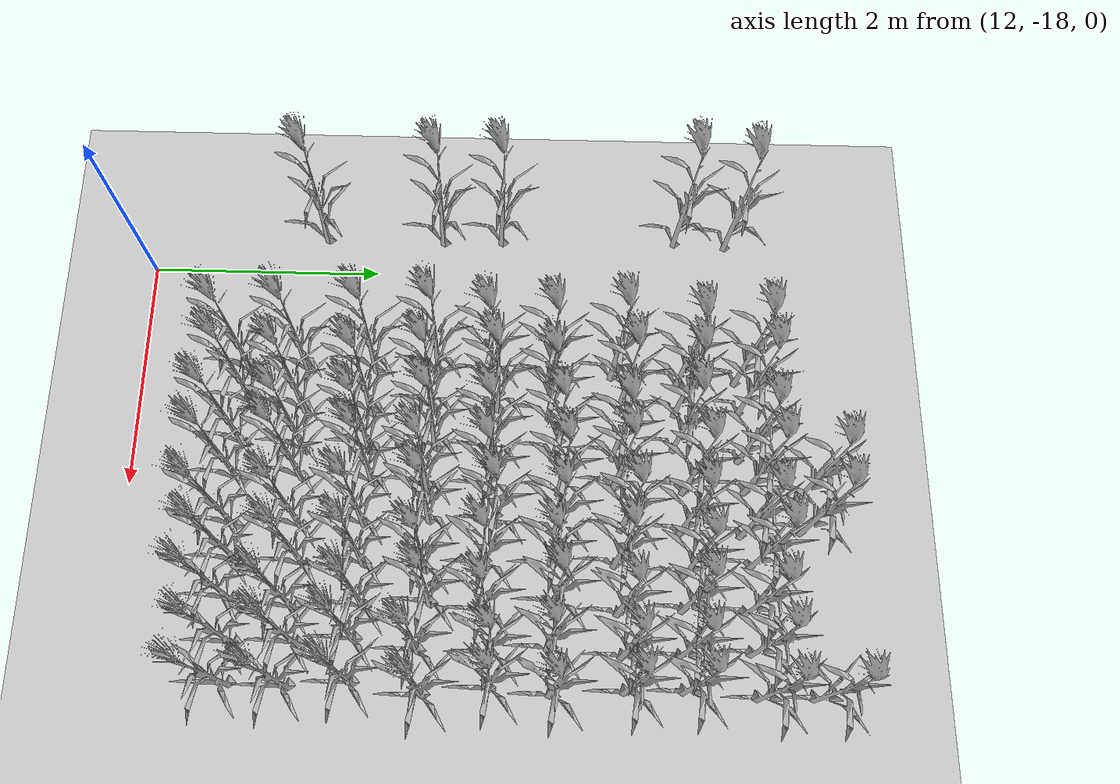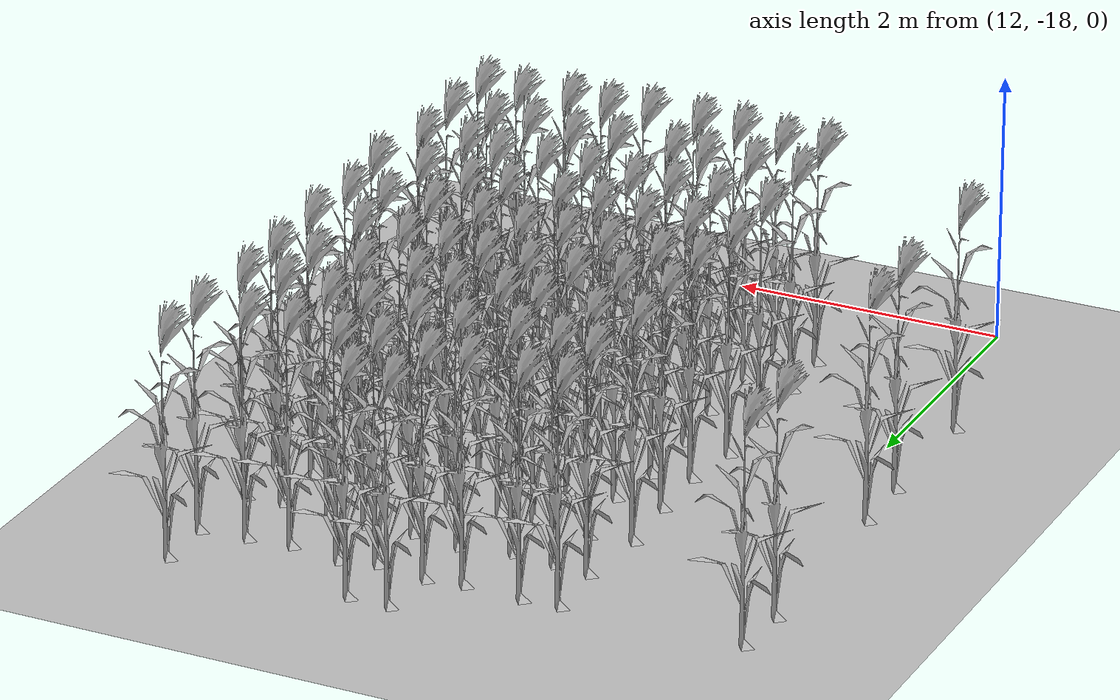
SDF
<sdf version="1.7">
 <world name="farmland_world">
  <model name="ground_plane">
   <static>1</static>
   <link name="link">
    <collision name="collision">
     <geometry><plane><normal>0 0 1</normal><size>40.0 40.0</size></plane></geometry>
     <surface><friction><ode><mu>100</mu><mu2>50</mu2></ode></friction></surface>
    </collision>
    <visual name="visual">
     <cast_shadows>0</cast_shadows>
     <geometry><plane><normal>0 0 1</normal><size>40.0 40.0</size></plane></geometry>
     <material>
      <script><uri>file://media/materials/scripts/gazebo.material</uri><name>Gazebo/Grey</name></script>
     </material>
    </visual>
   </link>
  </model>
  <model name="tree_3_1362">
   <static>1</static>
   <link name="link">
    <collision name="collision">
     <geometry><mesh><uri>model://Corn_low_poly/corn.obj</uri><scale>1 1 1</scale></mesh></geometry>
     <surface><friction><ode><mu>100</mu><mu2>50</mu2></ode></friction></surface>
    </collision>
    <visual name="visual">
     <geometry><mesh><uri>model://Corn_low_poly/corn.obj</uri><scale>1 1 1</scale></mesh></geometry>
    </visual>
   </link>
   <pose>11.697501459360396 -12.869083840189557 0 0 0 0</pose>
  </model>
  <model name="tree_3_1363">
   <static>1</static>
   <link name="link">
    <collision name="collision">
     <geometry><mesh><uri>model://Corn_low_poly/corn.obj</uri><scale>1 1 1</scale></mesh></geometry>
     <surface><friction><ode><mu>100</mu><mu2>50</mu2></ode></friction></surface>
    </collision>
    <visual name="visual">
     <geometry><mesh><uri>model://Corn_low_poly/corn.obj</uri><scale>1 1 1</scale></mesh></geometry>
    </visual>
   </link>
   <pose>11.67149992586985 -13.322973555650515 0 0 0 0</pose>
  </model>
  <model name="tree_3_1366">
   <static>1</static>
   <link name="link">
    <collision name="collision">
     <geometry><mesh><uri>model://Corn_low_poly/corn.obj</uri><scale>1 1 1</scale></mesh></geometry>
     <surface><friction><ode><mu>100</mu><mu2>50</mu2></ode></friction></surface>
    </collision>
    <visual name="visual">
     <geometry><mesh><uri>model://Corn_low_poly/corn.obj</uri><scale>1 1 1</scale></mesh></geometry>
    </visual>
   </link>
   <pose>11.69411471103588 -14.871365092113212 0 0 0 0</pose>
  </model>
  <model name="tree_3_1367">
   <static>1</static>
   <link name="link">
    <collision name="collision">
     <geometry><mesh><uri>model://Corn_low_poly/corn.obj</uri><scale>1 1 1</scale></mesh></geometry>
     <surface><friction><ode><mu>100</mu><mu2>50</mu2></ode></friction></surface>
    </collision>
    <visual name="visual">
     <geometry><mesh><uri>model://Corn_low_poly/corn.obj</uri><scale>1 1 1</scale></mesh></geometry>
    </visual>
   </link>
   <pose>11.707939173761234 -15.396487676786125 0 0 0 0</pose>
  </model>
  <model name="tree_3_1369">
   <static>1</static>
   <link name="link">
    <collision name="collision">
     <geometry><mesh><uri>model://Corn_low_poly/corn.obj</uri><scale>1 1 1</scale></mesh></geometry>
     <surface><friction><ode><mu>100</mu><mu2>50</mu2></ode></friction></surface>
    </collision>
    <visual name="visual">
     <geometry><mesh><uri>model://Corn_low_poly/corn.obj</uri><scale>1 1 1</scale></mesh></geometry>
    </visual>
   </link>
   <pose>11.705572449366686 -16.440091416027844 0 0 0 0</pose>
  </model>
  <model name="tree_3_1388">
   <static>1</static>
   <link name="link">
    <collision name="collision">
     <geometry><mesh><uri>model://Corn_low_poly/corn.obj</uri><scale>1 1 1</scale></mesh></geometry>
     <surface><friction><ode><mu>100</mu><mu2>50</mu2></ode></friction></surface>
    </collision>
    <visual name="visual">
     <geometry><mesh><uri>model://Corn_low_poly/corn.obj</uri><scale>1 1 1</scale></mesh></geometry>
    </visual>
   </link>
   <pose>13.011320342249725 -12.842452805272567 0 0 0 0</pose>
  </model>
  <model name="tree_3_1389">
   <static>1</static>
   <link name="link">
    <collision name="collision">
     <geometry><mesh><uri>model://Corn_low_poly/corn.obj</uri><scale>1 1 1</scale></mesh></geometry>
     <surface><friction><ode><mu>100</mu><mu2>50</mu2></ode></friction></surface>
    </collision>
    <visual name="visual">
     <geometry><mesh><uri>model://Corn_low_poly/corn.obj</uri><scale>1 1 1</scale></mesh></geometry>
    </visual>
   </link>
   <pose>13.042556014741894 -13.343472631238095 0 0 0 0</pose>
  </model>
  <model name="tree_3_1390">
   <static>1</static>
   <link name="link">
    <collision name="collision">
     <geometry><mesh><uri>model://Corn_low_poly/corn.obj</uri><scale>1 1 1</scale></mesh></geometry>
     <surface><friction><ode><mu>100</mu><mu2>50</mu2></ode></friction></surface>
    </collision>
    <visual name="visual">
     <geometry><mesh><uri>model://Corn_low_poly/corn.obj</uri><scale>1 1 1</scale></mesh></geometry>
    </visual>
   </link>
   <pose>12.978088396519173 -13.910164687847496 0 0 0 0</pose>
  </model>
  <model name="tree_3_1391">
   <static>1</static>
   <link name="link">
    <collision name="collision">
     <geometry><mesh><uri>model://Corn_low_poly/corn.obj</uri><scale>1 1 1</scale></mesh></geometry>
     <surface><friction><ode><mu>100</mu><mu2>50</mu2></ode></friction></surface>
    </collision>
    <visual name="visual">
     <geometry><mesh><uri>model://Corn_low_poly/corn.obj</uri><scale>1 1 1</scale></mesh></geometry>
    </visual>
   </link>
   <pose>13.014654697735462 -14.443761608048408 0 0 0 0</pose>
  </model>
  <model name="tree_3_1392">
   <static>1</static>
   <link name="link">
    <collision name="collision">
     <geometry><mesh><uri>model://Corn_low_poly/corn.obj</uri><scale>1 1 1</scale></mesh></geometry>
     <surface><friction><ode><mu>100</mu><mu2>50</mu2></ode></friction></surface>
    </collision>
    <visual name="visual">
     <geometry><mesh><uri>model://Corn_low_poly/corn.obj</uri><scale>1 1 1</scale></mesh></geometry>
    </visual>
   </link>
   <pose>13.02598268947191 -14.940279194729573 0 0 0 0</pose>
  </model>
  <model name="tree_3_1393">
   <static>1</static>
   <link name="link">
    <collision name="collision">
     <geometry><mesh><uri>model://Corn_low_poly/corn.obj</uri><scale>1 1 1</scale></mesh></geometry>
     <surface><friction><ode><mu>100</mu><mu2>50</mu2></ode></friction></surface>
    </collision>
    <visual name="visual">
     <geometry><mesh><uri>model://Corn_low_poly/corn.obj</uri><scale>1 1 1</scale></mesh></geometry>
    </visual>
   </link>
   <pose>12.959154561677662 -15.395484316480013 0 0 0 0</pose>
  </model>
  <model name="tree_3_1394">
   <static>1</static>
   <link name="link">
    <collision name="collision">
     <geometry><mesh><uri>model://Corn_low_poly/corn.obj</uri><scale>1 1 1</scale></mesh></geometry>
     <surface><friction><ode><mu>100</mu><mu2>50</mu2></ode></friction></surface>
    </collision>
    <visual name="visual">
     <geometry><mesh><uri>model://Corn_low_poly/corn.obj</uri><scale>1 1 1</scale></mesh></geometry>
    </visual>
   </link>
   <pose>12.96570724256964 -15.938171082130378 0 0 0 0</pose>
  </model>
  <model name="tree_3_1395">
   <static>1</static>
   <link name="link">
    <collision name="collision">
     <geometry><mesh><uri>model://Corn_low_poly/corn.obj</uri><scale>1 1 1</scale></mesh></geometry>
     <surface><friction><ode><mu>100</mu><mu2>50</mu2></ode></friction></surface>
    </collision>
    <visual name="visual">
     <geometry><mesh><uri>model://Corn_low_poly/corn.obj</uri><scale>1 1 1</scale></mesh></geometry>
    </visual>
   </link>
   <pose>12.985421435785682 -16.519694921492306 0 0 0 0</pose>
  </model>
  <model name="tree_3_1396">
   <static>1</static>
   <link name="link">
    <collision name="collision">
     <geometry><mesh><uri>model://Corn_low_poly/corn.obj</uri><scale>1 1 1</scale></mesh></geometry>
     <surface><friction><ode><mu>100</mu><mu2>50</mu2></ode></friction></surface>
    </collision>
    <visual name="visual">
     <geometry><mesh><uri>model://Corn_low_poly/corn.obj</uri><scale>1 1 1</scale></mesh></geometry>
    </visual>
   </link>
   <pose>13.010673307567629 -17.008779782518598 0 0 0 0</pose>
  </model>
  <model name="tree_3_1414">
   <static>1</static>
   <link name="link">
    <collision name="collision">
     <geometry><mesh><uri>model://Corn_low_poly/corn.obj</uri><scale>1 1 1</scale></mesh></geometry>
     <surface><friction><ode><mu>100</mu><mu2>50</mu2></ode></friction></surface>
    </collision>
    <visual name="visual">
     <geometry><mesh><uri>model://Corn_low_poly/corn.obj</uri><scale>1 1 1</scale></mesh></geometry>
    </visual>
   </link>
   <pose>13.284992286756198 -12.824619619617282 0 0 0 0</pose>
  </model>
  <model name="tree_3_1415">
   <static>1</static>
   <link name="link">
    <collision name="collision">
     <geometry><mesh><uri>model://Corn_low_poly/corn.obj</uri><scale>1 1 1</scale></mesh></geometry>
     <surface><friction><ode><mu>100</mu><mu2>50</mu2></ode></friction></surface>
    </collision>
    <visual name="visual">
     <geometry><mesh><uri>model://Corn_low_poly/corn.obj</uri><scale>1 1 1</scale></mesh></geometry>
    </visual>
   </link>
   <pose>13.309338559829909 -13.369005005067947 0 0 0 0</pose>
  </model>
  <model name="tree_3_1416">
   <static>1</static>
   <link name="link">
    <collision name="collision">
     <geometry><mesh><uri>model://Corn_low_poly/corn.obj</uri><scale>1 1 1</scale></mesh></geometry>
     <surface><friction><ode><mu>100</mu><mu2>50</mu2></ode></friction></surface>
    </collision>
    <visual name="visual">
     <geometry><mesh><uri>model://Corn_low_poly/corn.obj</uri><scale>1 1 1</scale></mesh></geometry>
    </visual>
   </link>
   <pose>13.287602424246929 -13.849346335144324 0 0 0 0</pose>
  </model>
  <model name="tree_3_1417">
   <static>1</static>
   <link name="link">
    <collision name="collision">
     <geometry><mesh><uri>model://Corn_low_poly/corn.obj</uri><scale>1 1 1</scale></mesh></geometry>
     <surface><friction><ode><mu>100</mu><mu2>50</mu2></ode></friction></surface>
    </collision>
    <visual name="visual">
     <geometry><mesh><uri>model://Corn_low_poly/corn.obj</uri><scale>1 1 1</scale></mesh></geometry>
    </visual>
   </link>
   <pose>13.367394692696136 -14.445709496980637 0 0 0 0</pose>
  </model>
  <model name="tree_3_1418">
   <static>1</static>
   <link name="link">
    <collision name="collision">
     <geometry><mesh><uri>model://Corn_low_poly/corn.obj</uri><scale>1 1 1</scale></mesh></geometry>
     <surface><friction><ode><mu>100</mu><mu2>50</mu2></ode></friction></surface>
    </collision>
    <visual name="visual">
     <geometry><mesh><uri>model://Corn_low_poly/corn.obj</uri><scale>1 1 1</scale></mesh></geometry>
    </visual>
   </link>
   <pose>13.296934470149006 -14.881244651749835 0 0 0 0</pose>
  </model>
  <model name="tree_3_1419">
   <static>1</static>
   <link name="link">
    <collision name="collision">
     <geometry><mesh><uri>model://Corn_low_poly/corn.obj</uri><scale>1 1 1</scale></mesh></geometry>
     <surface><friction><ode><mu>100</mu><mu2>50</mu2></ode></friction></surface>
    </collision>
    <visual name="visual">
     <geometry><mesh><uri>model://Corn_low_poly/corn.obj</uri><scale>1 1 1</scale></mesh></geometry>
    </visual>
   </link>
   <pose>13.305283916763315 -15.434298431665663 0 0 0 0</pose>
  </model>
  <model name="tree_3_1420">
   <static>1</static>
   <link name="link">
    <collision name="collision">
     <geometry><mesh><uri>model://Corn_low_poly/corn.obj</uri><scale>1 1 1</scale></mesh></geometry>
     <surface><friction><ode><mu>100</mu><mu2>50</mu2></ode></friction></surface>
    </collision>
    <visual name="visual">
     <geometry><mesh><uri>model://Corn_low_poly/corn.obj</uri><scale>1 1 1</scale></mesh></geometry>
    </visual>
   </link>
   <pose>13.358608782510135 -15.954387306302573 0 0 0 0</pose>
  </model>
  <model name="tree_3_1421">
   <static>1</static>
   <link name="link">
    <collision name="collision">
     <geometry><mesh><uri>model://Corn_low_poly/corn.obj</uri><scale>1 1 1</scale></mesh></geometry>
     <surface><friction><ode><mu>100</mu><mu2>50</mu2></ode></friction></surface>
    </collision>
    <visual name="visual">
     <geometry><mesh><uri>model://Corn_low_poly/corn.obj</uri><scale>1 1 1</scale></mesh></geometry>
    </visual>
   </link>
   <pose>13.34869832115895 -16.52777972273102 0 0 0 0</pose>
  </model>
  <model name="tree_3_1422">
   <static>1</static>
   <link name="link">
    <collision name="collision">
     <geometry><mesh><uri>model://Corn_low_poly/corn.obj</uri><scale>1 1 1</scale></mesh></geometry>
     <surface><friction><ode><mu>100</mu><mu2>50</mu2></ode></friction></surface>
    </collision>
    <visual name="visual">
     <geometry><mesh><uri>model://Corn_low_poly/corn.obj</uri><scale>1 1 1</scale></mesh></geometry>
    </visual>
   </link>
   <pose>13.31331343964356 -16.967025939361815 0 0 0 0</pose>
  </model>
  <model name="tree_3_1440">
   <static>1</static>
   <link name="link">
    <collision name="collision">
     <geometry><mesh><uri>model://Corn_low_poly/corn.obj</uri><scale>1 1 1</scale></mesh></geometry>
     <surface><friction><ode><mu>100</mu><mu2>50</mu2></ode></friction></surface>
    </collision>
    <visual name="visual">
     <geometry><mesh><uri>model://Corn_low_poly/corn.obj</uri><scale>1 1 1</scale></mesh></geometry>
    </visual>
   </link>
   <pose>13.712752408511916 -12.843676668473213 0 0 0 0</pose>
  </model>
  <model name="tree_3_1441">
   <static>1</static>
   <link name="link">
    <collision name="collision">
     <geometry><mesh><uri>model://Corn_low_poly/corn.obj</uri><scale>1 1 1</scale></mesh></geometry>
     <surface><friction><ode><mu>100</mu><mu2>50</mu2></ode></friction></surface>
    </collision>
    <visual name="visual">
     <geometry><mesh><uri>model://Corn_low_poly/corn.obj</uri><scale>1 1 1</scale></mesh></geometry>
    </visual>
   </link>
   <pose>13.626755268163906 -13.392242849504331 0 0 0 0</pose>
  </model>
  <model name="tree_3_1442">
   <static>1</static>
   <link name="link">
    <collision name="collision">
     <geometry><mesh><uri>model://Corn_low_poly/corn.obj</uri><scale>1 1 1</scale></mesh></geometry>
     <surface><friction><ode><mu>100</mu><mu2>50</mu2></ode></friction></surface>
    </collision>
    <visual name="visual">
     <geometry><mesh><uri>model://Corn_low_poly/corn.obj</uri><scale>1 1 1</scale></mesh></geometry>
    </visual>
   </link>
   <pose>13.71381948936875 -13.904394009980766 0 0 0 0</pose>
  </model>
  <model name="tree_3_1443">
   <static>1</static>
   <link name="link">
    <collision name="collision">
     <geometry><mesh><uri>model://Corn_low_poly/corn.obj</uri><scale>1 1 1</scale></mesh></geometry>
     <surface><friction><ode><mu>100</mu><mu2>50</mu2></ode></friction></surface>
    </collision>
    <visual name="visual">
     <geometry><mesh><uri>model://Corn_low_poly/corn.obj</uri><scale>1 1 1</scale></mesh></geometry>
    </visual>
   </link>
   <pose>13.695799678578418 -14.39206696149834 0 0 0 0</pose>
  </model>
  <model name="tree_3_1444">
   <static>1</static>
   <link name="link">
    <collision name="collision">
     <geometry><mesh><uri>model://Corn_low_poly/corn.obj</uri><scale>1 1 1</scale></mesh></geometry>
     <surface><friction><ode><mu>100</mu><mu2>50</mu2></ode></friction></surface>
    </collision>
    <visual name="visual">
     <geometry><mesh><uri>model://Corn_low_poly/corn.obj</uri><scale>1 1 1</scale></mesh></geometry>
    </visual>
   </link>
   <pose>13.701358547026853 -14.919839927928605 0 0 0 0</pose>
  </model>
  <model name="tree_3_1445">
   <static>1</static>
   <link name="link">
    <collision name="collision">
     <geometry><mesh><uri>model://Corn_low_poly/corn.obj</uri><scale>1 1 1</scale></mesh></geometry>
     <surface><friction><ode><mu>100</mu><mu2>50</mu2></ode></friction></surface>
    </collision>
    <visual name="visual">
     <geometry><mesh><uri>model://Corn_low_poly/corn.obj</uri><scale>1 1 1</scale></mesh></geometry>
    </visual>
   </link>
   <pose>13.65494423222576 -15.399158111199931 0 0 0 0</pose>
  </model>
  <model name="tree_3_1446">
   <static>1</static>
   <link name="link">
    <collision name="collision">
     <geometry><mesh><uri>model://Corn_low_poly/corn.obj</uri><scale>1 1 1</scale></mesh></geometry>
     <surface><friction><ode><mu>100</mu><mu2>50</mu2></ode></friction></surface>
    </collision>
    <visual name="visual">
     <geometry><mesh><uri>model://Corn_low_poly/corn.obj</uri><scale>1 1 1</scale></mesh></geometry>
    </visual>
   </link>
   <pose>13.69873847990649 -15.95251478428771 0 0 0 0</pose>
  </model>
  <model name="tree_3_1447">
   <static>1</static>
   <link name="link">
    <collision name="collision">
     <geometry><mesh><uri>model://Corn_low_poly/corn.obj</uri><scale>1 1 1</scale></mesh></geometry>
     <surface><friction><ode><mu>100</mu><mu2>50</mu2></ode></friction></surface>
    </collision>
    <visual name="visual">
     <geometry><mesh><uri>model://Corn_low_poly/corn.obj</uri><scale>1 1 1</scale></mesh></geometry>
    </visual>
   </link>
   <pose>13.709803151886966 -16.504630423612717 0 0 0 0</pose>
  </model>
  <model name="tree_3_1448">
   <static>1</static>
   <link name="link">
    <collision name="collision">
     <geometry><mesh><uri>model://Corn_low_poly/corn.obj</uri><scale>1 1 1</scale></mesh></geometry>
     <surface><friction><ode><mu>100</mu><mu2>50</mu2></ode></friction></surface>
    </collision>
    <visual name="visual">
     <geometry><mesh><uri>model://Corn_low_poly/corn.obj</uri><scale>1 1 1</scale></mesh></geometry>
    </visual>
   </link>
   <pose>13.665175245165234 -17.029376697786102 0 0 0 0</pose>
  </model>
  <model name="tree_3_1465">
   <static>1</static>
   <link name="link">
    <collision name="collision">
     <geometry><mesh><uri>model://Corn_low_poly/corn.obj</uri><scale>1 1 1</scale></mesh></geometry>
     <surface><friction><ode><mu>100</mu><mu2>50</mu2></ode></friction></surface>
    </collision>
    <visual name="visual">
     <geometry><mesh><uri>model://Corn_low_poly/corn.obj</uri><scale>1 1 1</scale></mesh></geometry>
    </visual>
   </link>
   <pose>14.019911788672077 -12.359114225486858 0 0 0 0</pose>
  </model>
  <model name="tree_3_1466">
   <static>1</static>
   <link name="link">
    <collision name="collision">
     <geometry><mesh><uri>model://Corn_low_poly/corn.obj</uri><scale>1 1 1</scale></mesh></geometry>
     <surface><friction><ode><mu>100</mu><mu2>50</mu2></ode></friction></surface>
    </collision>
    <visual name="visual">
     <geometry><mesh><uri>model://Corn_low_poly/corn.obj</uri><scale>1 1 1</scale></mesh></geometry>
    </visual>
   </link>
   <pose>13.983223211992643 -12.804982872669585 0 0 0 0</pose>
  </model>
  <model name="tree_3_1467">
   <static>1</static>
   <link name="link">
    <collision name="collision">
     <geometry><mesh><uri>model://Corn_low_poly/corn.obj</uri><scale>1 1 1</scale></mesh></geometry>
     <surface><friction><ode><mu>100</mu><mu2>50</mu2></ode></friction></surface>
    </collision>
    <visual name="visual">
     <geometry><mesh><uri>model://Corn_low_poly/corn.obj</uri><scale>1 1 1</scale></mesh></geometry>
    </visual>
   </link>
   <pose>13.996946574130272 -13.32255678220344 0 0 0 0</pose>
  </model>
  <model name="tree_3_1468">
   <static>1</static>
   <link name="link">
    <collision name="collision">
     <geometry><mesh><uri>model://Corn_low_poly/corn.obj</uri><scale>1 1 1</scale></mesh></geometry>
     <surface><friction><ode><mu>100</mu><mu2>50</mu2></ode></friction></surface>
    </collision>
    <visual name="visual">
     <geometry><mesh><uri>model://Corn_low_poly/corn.obj</uri><scale>1 1 1</scale></mesh></geometry>
    </visual>
   </link>
   <pose>13.972459985035465 -13.896842300018475 0 0 0 0</pose>
  </model>
  <model name="tree_3_1469">
   <static>1</static>
   <link name="link">
    <collision name="collision">
     <geometry><mesh><uri>model://Corn_low_poly/corn.obj</uri><scale>1 1 1</scale></mesh></geometry>
     <surface><friction><ode><mu>100</mu><mu2>50</mu2></ode></friction></surface>
    </collision>
    <visual name="visual">
     <geometry><mesh><uri>model://Corn_low_poly/corn.obj</uri><scale>1 1 1</scale></mesh></geometry>
    </visual>
   </link>
   <pose>14.028438410751695 -14.359699658280562 0 0 0 0</pose>
  </model>
  <model name="tree_3_1470">
   <static>1</static>
   <link name="link">
    <collision name="collision">
     <geometry><mesh><uri>model://Corn_low_poly/corn.obj</uri><scale>1 1 1</scale></mesh></geometry>
     <surface><friction><ode><mu>100</mu><mu2>50</mu2></ode></friction></surface>
    </collision>
    <visual name="visual">
     <geometry><mesh><uri>model://Corn_low_poly/corn.obj</uri><scale>1 1 1</scale></mesh></geometry>
    </visual>
   </link>
   <pose>14.025744366192601 -14.934210364165573 0 0 0 0</pose>
  </model>
  <model name="tree_3_1471">
   <static>1</static>
   <link name="link">
    <collision name="collision">
     <geometry><mesh><uri>model://Corn_low_poly/corn.obj</uri><scale>1 1 1</scale></mesh></geometry>
     <surface><friction><ode><mu>100</mu><mu2>50</mu2></ode></friction></surface>
    </collision>
    <visual name="visual">
     <geometry><mesh><uri>model://Corn_low_poly/corn.obj</uri><scale>1 1 1</scale></mesh></geometry>
    </visual>
   </link>
   <pose>14.01015998102441 -15.457493357047772 0 0 0 0</pose>
  </model>
  <model name="tree_3_1472">
   <static>1</static>
   <link name="link">
    <collision name="collision">
     <geometry><mesh><uri>model://Corn_low_poly/corn.obj</uri><scale>1 1 1</scale></mesh></geometry>
     <surface><friction><ode><mu>100</mu><mu2>50</mu2></ode></friction></surface>
    </collision>
    <visual name="visual">
     <geometry><mesh><uri>model://Corn_low_poly/corn.obj</uri><scale>1 1 1</scale></mesh></geometry>
    </visual>
   </link>
   <pose>13.977329255408192 -15.913141429764503 0 0 0 0</pose>
  </model>
  <model name="tree_3_1473">
   <static>1</static>
   <link name="link">
    <collision name="collision">
     <geometry><mesh><uri>model://Corn_low_poly/corn.obj</uri><scale>1 1 1</scale></mesh></geometry>
     <surface><friction><ode><mu>100</mu><mu2>50</mu2></ode></friction></surface>
    </collision>
    <visual name="visual">
     <geometry><mesh><uri>model://Corn_low_poly/corn.obj</uri><scale>1 1 1</scale></mesh></geometry>
    </visual>
   </link>
   <pose>13.950215140549412 -16.51399428957043 0 0 0 0</pose>
  </model>
  <model name="tree_3_1474">
   <static>1</static>
   <link name="link">
    <collision name="collision">
     <geometry><mesh><uri>model://Corn_low_poly/corn.obj</uri><scale>1 1 1</scale></mesh></geometry>
     <surface><friction><ode><mu>100</mu><mu2>50</mu2></ode></friction></surface>
    </collision>
    <visual name="visual">
     <geometry><mesh><uri>model://Corn_low_poly/corn.obj</uri><scale>1 1 1</scale></mesh></geometry>
    </visual>
   </link>
   <pose>13.98280743103663 -17.034350721100783 0 0 0 0</pose>
  </model>
  <model name="tree_3_1491">
   <static>1</static>
   <link name="link">
    <collision name="collision">
     <geometry><mesh><uri>model://Corn_low_poly/corn.obj</uri><scale>1 1 1</scale></mesh></geometry>
     <surface><friction><ode><mu>100</mu><mu2>50</mu2></ode></friction></surface>
    </collision>
    <visual name="visual">
     <geometry><mesh><uri>model://Corn_low_poly/corn.obj</uri><scale>1 1 1</scale></mesh></geometry>
    </visual>
   </link>
   <pose>14.324228261554197 -12.361077308180414 0 0 0 0</pose>
  </model>
  <model name="tree_3_1492">
   <static>1</static>
   <link name="link">
    <collision name="collision">
     <geometry><mesh><uri>model://Corn_low_poly/corn.obj</uri><scale>1 1 1</scale></mesh></geometry>
     <surface><friction><ode><mu>100</mu><mu2>50</mu2></ode></friction></surface>
    </collision>
    <visual name="visual">
     <geometry><mesh><uri>model://Corn_low_poly/corn.obj</uri><scale>1 1 1</scale></mesh></geometry>
    </visual>
   </link>
   <pose>14.36455341583653 -12.859147523605538 0 0 0 0</pose>
  </model>
  <model name="tree_3_1493">
   <static>1</static>
   <link name="link">
    <collision name="collision">
     <geometry><mesh><uri>model://Corn_low_poly/corn.obj</uri><scale>1 1 1</scale></mesh></geometry>
     <surface><friction><ode><mu>100</mu><mu2>50</mu2></ode></friction></surface>
    </collision>
    <visual name="visual">
     <geometry><mesh><uri>model://Corn_low_poly/corn.obj</uri><scale>1 1 1</scale></mesh></geometry>
    </visual>
   </link>
   <pose>14.354905802241051 -13.364027164068771 0 0 0 0</pose>
  </model>
  <model name="tree_3_1494">
   <static>1</static>
   <link name="link">
    <collision name="collision">
     <geometry><mesh><uri>model://Corn_low_poly/corn.obj</uri><scale>1 1 1</scale></mesh></geometry>
     <surface><friction><ode><mu>100</mu><mu2>50</mu2></ode></friction></surface>
    </collision>
    <visual name="visual">
     <geometry><mesh><uri>model://Corn_low_poly/corn.obj</uri><scale>1 1 1</scale></mesh></geometry>
    </visual>
   </link>
   <pose>14.332404787618907 -13.847559981812966 0 0 0 0</pose>
  </model>
  <model name="tree_3_1495">
   <static>1</static>
   <link name="link">
    <collision name="collision">
     <geometry><mesh><uri>model://Corn_low_poly/corn.obj</uri><scale>1 1 1</scale></mesh></geometry>
     <surface><friction><ode><mu>100</mu><mu2>50</mu2></ode></friction></surface>
    </collision>
    <visual name="visual">
     <geometry><mesh><uri>model://Corn_low_poly/corn.obj</uri><scale>1 1 1</scale></mesh></geometry>
    </visual>
   </link>
   <pose>14.35847623170337 -14.384291221751942 0 0 0 0</pose>
  </model>
  <model name="tree_3_1496">
   <static>1</static>
   <link name="link">
    <collision name="collision">
     <geometry><mesh><uri>model://Corn_low_poly/corn.obj</uri><scale>1 1 1</scale></mesh></geometry>
     <surface><friction><ode><mu>100</mu><mu2>50</mu2></ode></friction></surface>
    </collision>
    <visual name="visual">
     <geometry><mesh><uri>model://Corn_low_poly/corn.obj</uri><scale>1 1 1</scale></mesh></geometry>
    </visual>
   </link>
   <pose>14.316543955114787 -14.882080300545912 0 0 0 0</pose>
  </model>
  <model name="tree_3_1497">
   <static>1</static>
   <link name="link">
    <collision name="collision">
     <geometry><mesh><uri>model://Corn_low_poly/corn.obj</uri><scale>1 1 1</scale></mesh></geometry>
     <surface><friction><ode><mu>100</mu><mu2>50</mu2></ode></friction></surface>
    </collision>
    <visual name="visual">
     <geometry><mesh><uri>model://Corn_low_poly/corn.obj</uri><scale>1 1 1</scale></mesh></geometry>
    </visual>
   </link>
   <pose>14.293916626982037 -15.429731004891826 0 0 0 0</pose>
  </model>
  <model name="tree_3_1498">
   <static>1</static>
   <link name="link">
    <collision name="collision">
     <geometry><mesh><uri>model://Corn_low_poly/corn.obj</uri><scale>1 1 1</scale></mesh></geometry>
     <surface><friction><ode><mu>100</mu><mu2>50</mu2></ode></friction></surface>
    </collision>
    <visual name="visual">
     <geometry><mesh><uri>model://Corn_low_poly/corn.obj</uri><scale>1 1 1</scale></mesh></geometry>
    </visual>
   </link>
   <pose>14.344343204666465 -15.964059347957939 0 0 0 0</pose>
  </model>
  <model name="tree_3_1499">
   <static>1</static>
   <link name="link">
    <collision name="collision">
     <geometry><mesh><uri>model://Corn_low_poly/corn.obj</uri><scale>1 1 1</scale></mesh></geometry>
     <surface><friction><ode><mu>100</mu><mu2>50</mu2></ode></friction></surface>
    </collision>
    <visual name="visual">
     <geometry><mesh><uri>model://Corn_low_poly/corn.obj</uri><scale>1 1 1</scale></mesh></geometry>
    </visual>
   </link>
   <pose>14.375310951985597 -16.483070248388525 0 0 0 0</pose>
  </model>
  <model name="tree_3_1500">
   <static>1</static>
   <link name="link">
    <collision name="collision">
     <geometry><mesh><uri>model://Corn_low_poly/corn.obj</uri><scale>1 1 1</scale></mesh></geometry>
     <surface><friction><ode><mu>100</mu><mu2>50</mu2></ode></friction></surface>
    </collision>
    <visual name="visual">
     <geometry><mesh><uri>model://Corn_low_poly/corn.obj</uri><scale>1 1 1</scale></mesh></geometry>
    </visual>
   </link>
   <pose>14.377451573648417 -17.03816835301578 0 0 0 0</pose>
  </model>
  <model name="tree_3_1518">
   <static>1</static>
   <link name="link">
    <collision name="collision">
     <geometry><mesh><uri>model://Corn_low_poly/corn.obj</uri><scale>1 1 1</scale></mesh></geometry>
     <surface><friction><ode><mu>100</mu><mu2>50</mu2></ode></friction></surface>
    </collision>
    <visual name="visual">
     <geometry><mesh><uri>model://Corn_low_poly/corn.obj</uri><scale>1 1 1</scale></mesh></geometry>
    </visual>
   </link>
   <pose>14.624277126184815 -12.796285445482797 0 0 0 0</pose>
  </model>
  <model name="tree_3_1519">
   <static>1</static>
   <link name="link">
    <collision name="collision">
     <geometry><mesh><uri>model://Corn_low_poly/corn.obj</uri><scale>1 1 1</scale></mesh></geometry>
     <surface><friction><ode><mu>100</mu><mu2>50</mu2></ode></friction></surface>
    </collision>
    <visual name="visual">
     <geometry><mesh><uri>model://Corn_low_poly/corn.obj</uri><scale>1 1 1</scale></mesh></geometry>
    </visual>
   </link>
   <pose>14.705737545760059 -13.340520514728222 0 0 0 0</pose>
  </model>
  <model name="tree_3_1520">
   <static>1</static>
   <link name="link">
    <collision name="collision">
     <geometry><mesh><uri>model://Corn_low_poly/corn.obj</uri><scale>1 1 1</scale></mesh></geometry>
     <surface><friction><ode><mu>100</mu><mu2>50</mu2></ode></friction></surface>
    </collision>
    <visual name="visual">
     <geometry><mesh><uri>model://Corn_low_poly/corn.obj</uri><scale>1 1 1</scale></mesh></geometry>
    </visual>
   </link>
   <pose>14.636205866269067 -13.904840391808312 0 0 0 0</pose>
  </model>
  <model name="tree_3_1521">
   <static>1</static>
   <link name="link">
    <collision name="collision">
     <geometry><mesh><uri>model://Corn_low_poly/corn.obj</uri><scale>1 1 1</scale></mesh></geometry>
     <surface><friction><ode><mu>100</mu><mu2>50</mu2></ode></friction></surface>
    </collision>
    <visual name="visual">
     <geometry><mesh><uri>model://Corn_low_poly/corn.obj</uri><scale>1 1 1</scale></mesh></geometry>
    </visual>
   </link>
   <pose>14.669967809143857 -14.438661580343464 0 0 0 0</pose>
  </model>
  <model name="tree_3_1522">
   <static>1</static>
   <link name="link">
    <collision name="collision">
     <geometry><mesh><uri>model://Corn_low_poly/corn.obj</uri><scale>1 1 1</scale></mesh></geometry>
     <surface><friction><ode><mu>100</mu><mu2>50</mu2></ode></friction></surface>
    </collision>
    <visual name="visual">
     <geometry><mesh><uri>model://Corn_low_poly/corn.obj</uri><scale>1 1 1</scale></mesh></geometry>
    </visual>
   </link>
   <pose>14.675889032831059 -14.961352260798503 0 0 0 0</pose>
  </model>
  <model name="tree_3_1523">
   <static>1</static>
   <link name="link">
    <collision name="collision">
     <geometry><mesh><uri>model://Corn_low_poly/corn.obj</uri><scale>1 1 1</scale></mesh></geometry>
     <surface><friction><ode><mu>100</mu><mu2>50</mu2></ode></friction></surface>
    </collision>
    <visual name="visual">
     <geometry><mesh><uri>model://Corn_low_poly/corn.obj</uri><scale>1 1 1</scale></mesh></geometry>
    </visual>
   </link>
   <pose>14.709144555828185 -15.444851865371758 0 0 0 0</pose>
  </model>
  <model name="tree_3_1524">
   <static>1</static>
   <link name="link">
    <collision name="collision">
     <geometry><mesh><uri>model://Corn_low_poly/corn.obj</uri><scale>1 1 1</scale></mesh></geometry>
     <surface><friction><ode><mu>100</mu><mu2>50</mu2></ode></friction></surface>
    </collision>
    <visual name="visual">
     <geometry><mesh><uri>model://Corn_low_poly/corn.obj</uri><scale>1 1 1</scale></mesh></geometry>
    </visual>
   </link>
   <pose>14.673624810560716 -15.953040843319469 0 0 0 0</pose>
  </model>
  <model name="tree_3_1525">
   <static>1</static>
   <link name="link">
    <collision name="collision">
     <geometry><mesh><uri>model://Corn_low_poly/corn.obj</uri><scale>1 1 1</scale></mesh></geometry>
     <surface><friction><ode><mu>100</mu><mu2>50</mu2></ode></friction></surface>
    </collision>
    <visual name="visual">
     <geometry><mesh><uri>model://Corn_low_poly/corn.obj</uri><scale>1 1 1</scale></mesh></geometry>
    </visual>
   </link>
   <pose>14.696944113388229 -16.43522250280058 0 0 0 0</pose>
  </model>
  <model name="tree_3_1526">
   <static>1</static>
   <link name="link">
    <collision name="collision">
     <geometry><mesh><uri>model://Corn_low_poly/corn.obj</uri><scale>1 1 1</scale></mesh></geometry>
     <surface><friction><ode><mu>100</mu><mu2>50</mu2></ode></friction></surface>
    </collision>
    <visual name="visual">
     <geometry><mesh><uri>model://Corn_low_poly/corn.obj</uri><scale>1 1 1</scale></mesh></geometry>
    </visual>
   </link>
   <pose>14.680880444474038 -16.97894404748824 0 0 0 0</pose>
  </model>
  <model name="tree_3_1544">
   <static>1</static>
   <link name="link">
    <collision name="collision">
     <geometry><mesh><uri>model://Corn_low_poly/corn.obj</uri><scale>1 1 1</scale></mesh></geometry>
     <surface><friction><ode><mu>100</mu><mu2>50</mu2></ode></friction></surface>
    </collision>
    <visual name="visual">
     <geometry><mesh><uri>model://Corn_low_poly/corn.obj</uri><scale>1 1 1</scale></mesh></geometry>
    </visual>
   </link>
   <pose>15.007615170043966 -12.855338341904393 0 0 0 0</pose>
  </model>
  <model name="tree_3_1545">
   <static>1</static>
   <link name="link">
    <collision name="collision">
     <geometry><mesh><uri>model://Corn_low_poly/corn.obj</uri><scale>1 1 1</scale></mesh></geometry>
     <surface><friction><ode><mu>100</mu><mu2>50</mu2></ode></friction></surface>
    </collision>
    <visual name="visual">
     <geometry><mesh><uri>model://Corn_low_poly/corn.obj</uri><scale>1 1 1</scale></mesh></geometry>
    </visual>
   </link>
   <pose>14.992035508724868 -13.361884054391515 0 0 0 0</pose>
  </model>
  <model name="tree_3_1546">
   <static>1</static>
   <link name="link">
    <collision name="collision">
     <geometry><mesh><uri>model://Corn_low_poly/corn.obj</uri><scale>1 1 1</scale></mesh></geometry>
     <surface><friction><ode><mu>100</mu><mu2>50</mu2></ode></friction></surface>
    </collision>
    <visual name="visual">
     <geometry><mesh><uri>model://Corn_low_poly/corn.obj</uri><scale>1 1 1</scale></mesh></geometry>
    </visual>
   </link>
   <pose>15.032030947464522 -13.884749216927016 0 0 0 0</pose>
  </model>
  <model name="tree_3_1547">
   <static>1</static>
   <link name="link">
    <collision name="collision">
     <geometry><mesh><uri>model://Corn_low_poly/corn.obj</uri><scale>1 1 1</scale></mesh></geometry>
     <surface><friction><ode><mu>100</mu><mu2>50</mu2></ode></friction></surface>
    </collision>
    <visual name="visual">
     <geometry><mesh><uri>model://Corn_low_poly/corn.obj</uri><scale>1 1 1</scale></mesh></geometry>
    </visual>
   </link>
   <pose>14.964595137604869 -14.399756644138701 0 0 0 0</pose>
  </model>
  <model name="tree_3_1548">
   <static>1</static>
   <link name="link">
    <collision name="collision">
     <geometry><mesh><uri>model://Corn_low_poly/corn.obj</uri><scale>1 1 1</scale></mesh></geometry>
     <surface><friction><ode><mu>100</mu><mu2>50</mu2></ode></friction></surface>
    </collision>
    <visual name="visual">
     <geometry><mesh><uri>model://Corn_low_poly/corn.obj</uri><scale>1 1 1</scale></mesh></geometry>
    </visual>
   </link>
   <pose>15.045027034960453 -14.968430316278443 0 0 0 0</pose>
  </model>
  <model name="tree_3_1549">
   <static>1</static>
   <link name="link">
    <collision name="collision">
     <geometry><mesh><uri>model://Corn_low_poly/corn.obj</uri><scale>1 1 1</scale></mesh></geometry>
     <surface><friction><ode><mu>100</mu><mu2>50</mu2></ode></friction></surface>
    </collision>
    <visual name="visual">
     <geometry><mesh><uri>model://Corn_low_poly/corn.obj</uri><scale>1 1 1</scale></mesh></geometry>
    </visual>
   </link>
   <pose>14.987847685831039 -15.397918238675627 0 0 0 0</pose>
  </model>
  <model name="tree_3_1550">
   <static>1</static>
   <link name="link">
    <collision name="collision">
     <geometry><mesh><uri>model://Corn_low_poly/corn.obj</uri><scale>1 1 1</scale></mesh></geometry>
     <surface><friction><ode><mu>100</mu><mu2>50</mu2></ode></friction></surface>
    </collision>
    <visual name="visual">
     <geometry><mesh><uri>model://Corn_low_poly/corn.obj</uri><scale>1 1 1</scale></mesh></geometry>
    </visual>
   </link>
   <pose>15.02714801391016 -15.932594935659154 0 0 0 0</pose>
  </model>
  <model name="tree_3_1551">
   <static>1</static>
   <link name="link">
    <collision name="collision">
     <geometry><mesh><uri>model://Corn_low_poly/corn.obj</uri><scale>1 1 1</scale></mesh></geometry>
     <surface><friction><ode><mu>100</mu><mu2>50</mu2></ode></friction></surface>
    </collision>
    <visual name="visual">
     <geometry><mesh><uri>model://Corn_low_poly/corn.obj</uri><scale>1 1 1</scale></mesh></geometry>
    </visual>
   </link>
   <pose>15.048198115479313 -16.497297328961423 0 0 0 0</pose>
  </model>
  <model name="tree_3_1552">
   <static>1</static>
   <link name="link">
    <collision name="collision">
     <geometry><mesh><uri>model://Corn_low_poly/corn.obj</uri><scale>1 1 1</scale></mesh></geometry>
     <surface><friction><ode><mu>100</mu><mu2>50</mu2></ode></friction></surface>
    </collision>
    <visual name="visual">
     <geometry><mesh><uri>model://Corn_low_poly/corn.obj</uri><scale>1 1 1</scale></mesh></geometry>
    </visual>
   </link>
   <pose>14.989047938800775 -17.01169916933474 0 0 0 0</pose>
  </model>
  <model name="tree_3_1570">
   <static>1</static>
   <link name="link">
    <collision name="collision">
     <geometry><mesh><uri>model://Corn_low_poly/corn.obj</uri><scale>1 1 1</scale></mesh></geometry>
     <surface><friction><ode><mu>100</mu><mu2>50</mu2></ode></friction></surface>
    </collision>
    <visual name="visual">
     <geometry><mesh><uri>model://Corn_low_poly/corn.obj</uri><scale>1 1 1</scale></mesh></geometry>
    </visual>
   </link>
   <pose>15.326113437919945 -12.823148374611671 0 0 0 0</pose>
  </model>
  <model name="tree_3_1571">
   <static>1</static>
   <link name="link">
    <collision name="collision">
     <geometry><mesh><uri>model://Corn_low_poly/corn.obj</uri><scale>1 1 1</scale></mesh></geometry>
     <surface><friction><ode><mu>100</mu><mu2>50</mu2></ode></friction></surface>
    </collision>
    <visual name="visual">
     <geometry><mesh><uri>model://Corn_low_poly/corn.obj</uri><scale>1 1 1</scale></mesh></geometry>
    </visual>
   </link>
   <pose>15.362348766753193 -13.397165462819284 0 0 0 0</pose>
  </model>
  <model name="tree_3_1572">
   <static>1</static>
   <link name="link">
    <collision name="collision">
     <geometry><mesh><uri>model://Corn_low_poly/corn.obj</uri><scale>1 1 1</scale></mesh></geometry>
     <surface><friction><ode><mu>100</mu><mu2>50</mu2></ode></friction></surface>
    </collision>
    <visual name="visual">
     <geometry><mesh><uri>model://Corn_low_poly/corn.obj</uri><scale>1 1 1</scale></mesh></geometry>
    </visual>
   </link>
   <pose>15.374897723638478 -13.858490150604409 0 0 0 0</pose>
  </model>
  <model name="tree_3_1573">
   <static>1</static>
   <link name="link">
    <collision name="collision">
     <geometry><mesh><uri>model://Corn_low_poly/corn.obj</uri><scale>1 1 1</scale></mesh></geometry>
     <surface><friction><ode><mu>100</mu><mu2>50</mu2></ode></friction></surface>
    </collision>
    <visual name="visual">
     <geometry><mesh><uri>model://Corn_low_poly/corn.obj</uri><scale>1 1 1</scale></mesh></geometry>
    </visual>
   </link>
   <pose>15.3263267942954 -14.449967590961876 0 0 0 0</pose>
  </model>
  <model name="tree_3_1574">
   <static>1</static>
   <link name="link">
    <collision name="collision">
     <geometry><mesh><uri>model://Corn_low_poly/corn.obj</uri><scale>1 1 1</scale></mesh></geometry>
     <surface><friction><ode><mu>100</mu><mu2>50</mu2></ode></friction></surface>
    </collision>
    <visual name="visual">
     <geometry><mesh><uri>model://Corn_low_poly/corn.obj</uri><scale>1 1 1</scale></mesh></geometry>
    </visual>
   </link>
   <pose>15.37939403340856 -14.907829010568001 0 0 0 0</pose>
  </model>
  <model name="tree_3_1575">
   <static>1</static>
   <link name="link">
    <collision name="collision">
     <geometry><mesh><uri>model://Corn_low_poly/corn.obj</uri><scale>1 1 1</scale></mesh></geometry>
     <surface><friction><ode><mu>100</mu><mu2>50</mu2></ode></friction></surface>
    </collision>
    <visual name="visual">
     <geometry><mesh><uri>model://Corn_low_poly/corn.obj</uri><scale>1 1 1</scale></mesh></geometry>
    </visual>
   </link>
   <pose>15.370918966274065 -15.478370502854457 0 0 0 0</pose>
  </model>
  <model name="tree_3_1576">
   <static>1</static>
   <link name="link">
    <collision name="collision">
     <geometry><mesh><uri>model://Corn_low_poly/corn.obj</uri><scale>1 1 1</scale></mesh></geometry>
     <surface><friction><ode><mu>100</mu><mu2>50</mu2></ode></friction></surface>
    </collision>
    <visual name="visual">
     <geometry><mesh><uri>model://Corn_low_poly/corn.obj</uri><scale>1 1 1</scale></mesh></geometry>
    </visual>
   </link>
   <pose>15.291338443665559 -15.99514344496552 0 0 0 0</pose>
  </model>
  <model name="tree_3_1577">
   <static>1</static>
   <link name="link">
    <collision name="collision">
     <geometry><mesh><uri>model://Corn_low_poly/corn.obj</uri><scale>1 1 1</scale></mesh></geometry>
     <surface><friction><ode><mu>100</mu><mu2>50</mu2></ode></friction></surface>
    </collision>
    <visual name="visual">
     <geometry><mesh><uri>model://Corn_low_poly/corn.obj</uri><scale>1 1 1</scale></mesh></geometry>
    </visual>
   </link>
   <pose>15.330879083221259 -16.460542548586538 0 0 0 0</pose>
  </model>
  <model name="tree_3_1578">
   <static>1</static>
   <link name="link">
    <collision name="collision">
     <geometry><mesh><uri>model://Corn_low_poly/corn.obj</uri><scale>1 1 1</scale></mesh></geometry>
     <surface><friction><ode><mu>100</mu><mu2>50</mu2></ode></friction></surface>
    </collision>
    <visual name="visual">
     <geometry><mesh><uri>model://Corn_low_poly/corn.obj</uri><scale>1 1 1</scale></mesh></geometry>
    </visual>
   </link>
   <pose>15.342128267450516 -16.955982934795088 0 0 0 0</pose>
  </model>
  <model name="tree_3_1595">
   <static>1</static>
   <link name="link">
    <collision name="collision">
     <geometry><mesh><uri>model://Corn_low_poly/corn.obj</uri><scale>1 1 1</scale></mesh></geometry>
     <surface><friction><ode><mu>100</mu><mu2>50</mu2></ode></friction></surface>
    </collision>
    <visual name="visual">
     <geometry><mesh><uri>model://Corn_low_poly/corn.obj</uri><scale>1 1 1</scale></mesh></geometry>
    </visual>
   </link>
   <pose>15.664037694133317 -12.344909144686657 0 0 0 0</pose>
  </model>
  <model name="tree_3_1596">
   <static>1</static>
   <link name="link">
    <collision name="collision">
     <geometry><mesh><uri>model://Corn_low_poly/corn.obj</uri><scale>1 1 1</scale></mesh></geometry>
     <surface><friction><ode><mu>100</mu><mu2>50</mu2></ode></friction></surface>
    </collision>
    <visual name="visual">
     <geometry><mesh><uri>model://Corn_low_poly/corn.obj</uri><scale>1 1 1</scale></mesh></geometry>
    </visual>
   </link>
   <pose>15.672385531121144 -12.794095584142807 0 0 0 0</pose>
  </model>
  <model name="tree_3_1597">
   <static>1</static>
   <link name="link">
    <collision name="collision">
     <geometry><mesh><uri>model://Corn_low_poly/corn.obj</uri><scale>1 1 1</scale></mesh></geometry>
     <surface><friction><ode><mu>100</mu><mu2>50</mu2></ode></friction></surface>
    </collision>
    <visual name="visual">
     <geometry><mesh><uri>model://Corn_low_poly/corn.obj</uri><scale>1 1 1</scale></mesh></geometry>
    </visual>
   </link>
   <pose>15.637989203207276 -13.37731661149745 0 0 0 0</pose>
  </model>
  <model name="tree_3_1598">
   <static>1</static>
   <link name="link">
    <collision name="collision">
     <geometry><mesh><uri>model://Corn_low_poly/corn.obj</uri><scale>1 1 1</scale></mesh></geometry>
     <surface><friction><ode><mu>100</mu><mu2>50</mu2></ode></friction></surface>
    </collision>
    <visual name="visual">
     <geometry><mesh><uri>model://Corn_low_poly/corn.obj</uri><scale>1 1 1</scale></mesh></geometry>
    </visual>
   </link>
   <pose>15.652113587235965 -13.843525597733386 0 0 0 0</pose>
  </model>
  <model name="tree_3_1599">
   <static>1</static>
   <link name="link">
    <collision name="collision">
     <geometry><mesh><uri>model://Corn_low_poly/corn.obj</uri><scale>1 1 1</scale></mesh></geometry>
     <surface><friction><ode><mu>100</mu><mu2>50</mu2></ode></friction></surface>
    </collision>
    <visual name="visual">
     <geometry><mesh><uri>model://Corn_low_poly/corn.obj</uri><scale>1 1 1</scale></mesh></geometry>
    </visual>
   </link>
   <pose>15.686494747825286 -14.43250524830791 0 0 0 0</pose>
  </model>
  <model name="tree_3_1600">
   <static>1</static>
   <link name="link">
    <collision name="collision">
     <geometry><mesh><uri>model://Corn_low_poly/corn.obj</uri><scale>1 1 1</scale></mesh></geometry>
     <surface><friction><ode><mu>100</mu><mu2>50</mu2></ode></friction></surface>
    </collision>
    <visual name="visual">
     <geometry><mesh><uri>model://Corn_low_poly/corn.obj</uri><scale>1 1 1</scale></mesh></geometry>
    </visual>
   </link>
   <pose>15.649309736325321 -14.913036160945458 0 0 0 0</pose>
  </model>
  <model name="tree_3_1601">
   <static>1</static>
   <link name="link">
    <collision name="collision">
     <geometry><mesh><uri>model://Corn_low_poly/corn.obj</uri><scale>1 1 1</scale></mesh></geometry>
     <surface><friction><ode><mu>100</mu><mu2>50</mu2></ode></friction></surface>
    </collision>
    <visual name="visual">
     <geometry><mesh><uri>model://Corn_low_poly/corn.obj</uri><scale>1 1 1</scale></mesh></geometry>
    </visual>
   </link>
   <pose>15.714240734408989 -15.434122332451224 0 0 0 0</pose>
  </model>
  <model name="tree_3_1602">
   <static>1</static>
   <link name="link">
    <collision name="collision">
     <geometry><mesh><uri>model://Corn_low_poly/corn.obj</uri><scale>1 1 1</scale></mesh></geometry>
     <surface><friction><ode><mu>100</mu><mu2>50</mu2></ode></friction></surface>
    </collision>
    <visual name="visual">
     <geometry><mesh><uri>model://Corn_low_poly/corn.obj</uri><scale>1 1 1</scale></mesh></geometry>
    </visual>
   </link>
   <pose>15.632389636229949 -15.999169862067603 0 0 0 0</pose>
  </model>
  <model name="tree_3_1603">
   <static>1</static>
   <link name="link">
    <collision name="collision">
     <geometry><mesh><uri>model://Corn_low_poly/corn.obj</uri><scale>1 1 1</scale></mesh></geometry>
     <surface><friction><ode><mu>100</mu><mu2>50</mu2></ode></friction></surface>
    </collision>
    <visual name="visual">
     <geometry><mesh><uri>model://Corn_low_poly/corn.obj</uri><scale>1 1 1</scale></mesh></geometry>
    </visual>
   </link>
   <pose>15.669642163791927 -16.505753357796543 0 0 0 0</pose>
  </model>
  <model name="tree_3_1604">
   <static>1</static>
   <link name="link">
    <collision name="collision">
     <geometry><mesh><uri>model://Corn_low_poly/corn.obj</uri><scale>1 1 1</scale></mesh></geometry>
     <surface><friction><ode><mu>100</mu><mu2>50</mu2></ode></friction></surface>
    </collision>
    <visual name="visual">
     <geometry><mesh><uri>model://Corn_low_poly/corn.obj</uri><scale>1 1 1</scale></mesh></geometry>
    </visual>
   </link>
   <pose>15.658721290688904 -16.9819667796184 0 0 0 0</pose>
  </model>
 </world>
</sdf>
